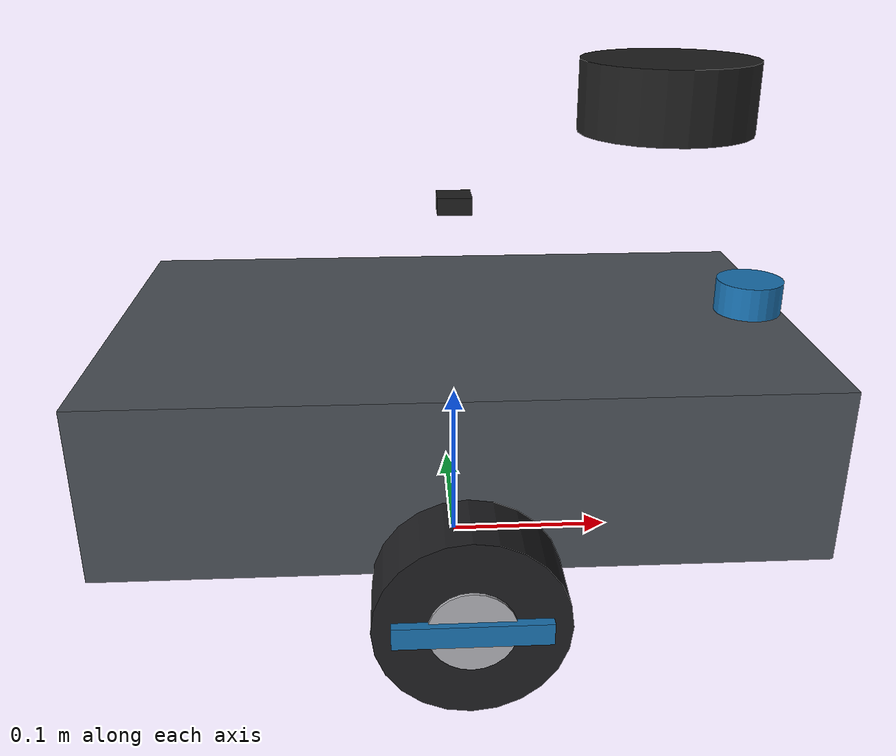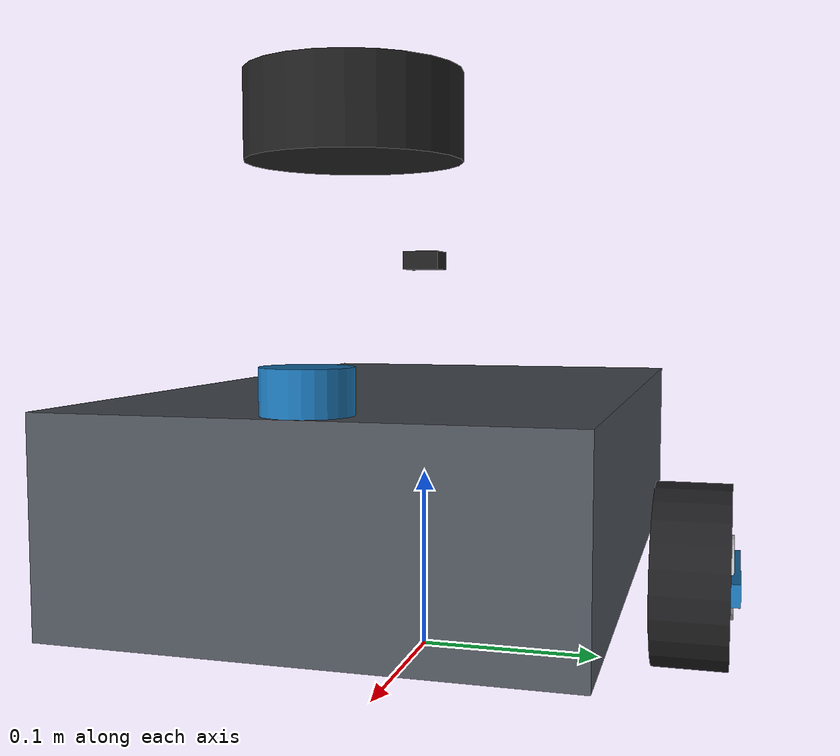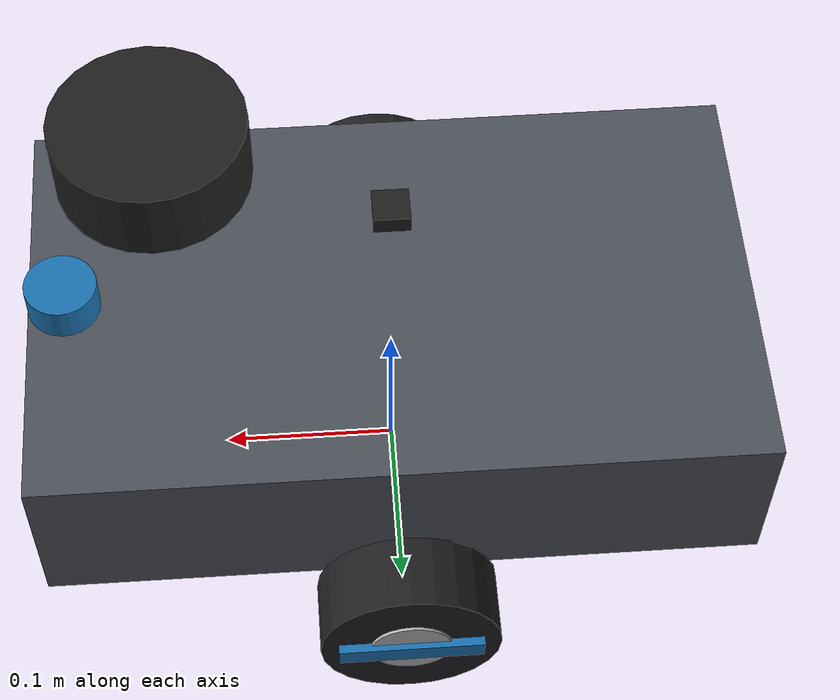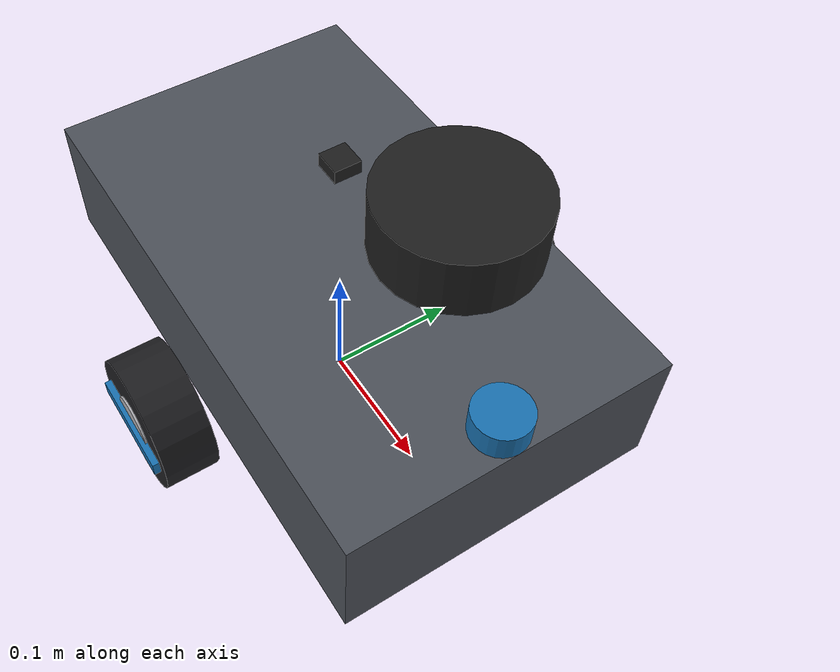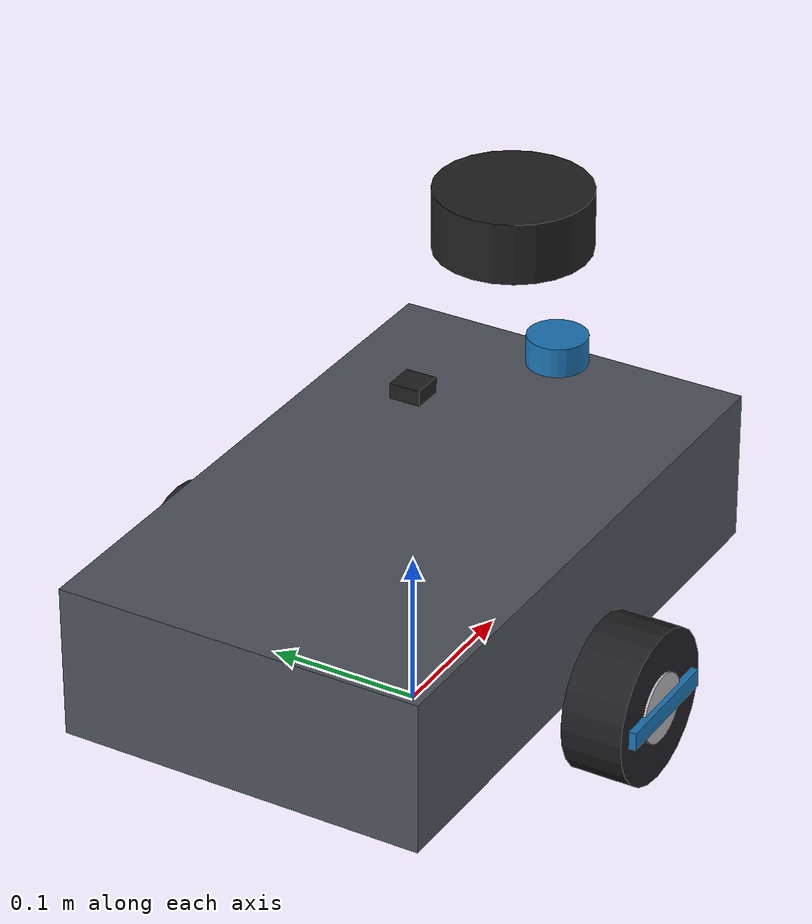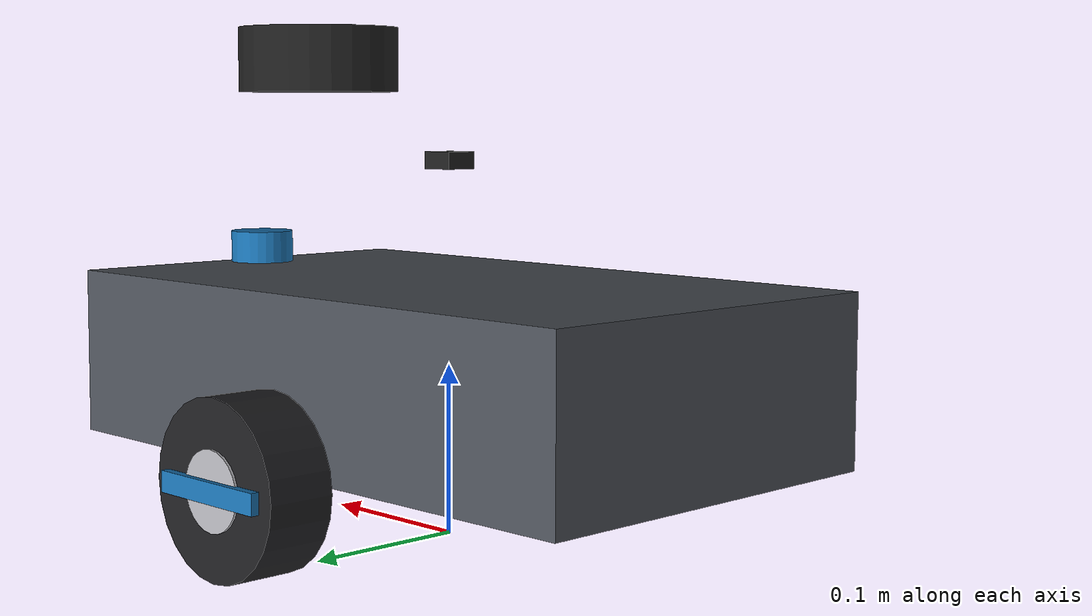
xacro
<?xml version="1.0"?>
<robot name="fleet_x_amr" xmlns:xacro="http://www.ros.org/wiki/xacro">

  <!-- ==================== Dimensions ==================== -->
  <xacro:include filename="$(find fleet_x_amr)/urdf/fleet_x_amr_dimensions.xacro"/>

  <!-- ==================== Appearance ==================== -->
  <xacro:include filename="$(find fleet_x_amr)/urdf/fleet_x_amr_materials.xacro"/>

  <!-- ==================== Kinematics and dynamics ==================== -->
  <xacro:include filename="$(find fleet_x_amr)/urdf/fleet_x_amr_chassis.xacro"/>
  <xacro:include filename="$(find fleet_x_amr)/urdf/fleet_x_amr_wheels.xacro"/>

  <!-- ==================== ros2_control ==================== -->
  <xacro:include filename="$(find fleet_x_amr)/urdf/fleet_x_amr_ros2_control.xacro"/>

  <!-- ==================== Sensors ==================== -->
  <xacro:include filename="$(find fleet_x_amr)/urdf/fleet_x_amr_sensors.xacro"/>

</robot>

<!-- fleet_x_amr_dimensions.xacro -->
<robot xmlns:xacro="http://www.ros.org/wiki/xacro">

  <!-- ==================== Drive geometry ==================== -->
  <!-- Wheel contact patch radius. Also the odometry conversion constant:
       v = wheel_radius * wheel_angular_velocity. -->
  <xacro:property name="WHEEL_RADIUS" value="0.05"/>
  <!-- Wheel thickness along its spin axis (the robot's Y axis). -->
  <xacro:property name="WHEEL_WIDTH" value="0.04"/>

  <!-- Track width: centre-to-centre distance of the two wheel contact
       points. This is the "wheel_separation" consumed by
       diff_drive_controller. -->
  <xacro:property name="WHEEL_SEPARATION" value="0.30"/>

  <!-- ==================== Chassis geometry ==================== -->
  <xacro:property name="BASE_LENGTH" value="0.40"/>
  <xacro:property name="BASE_HEIGHT" value="0.10"/>
  <xacro:property name="BASE_LINK_HEIGHT" value="0.10"/>
  <xacro:property name="BASE_MASS" value="5.0"/>
  <xacro:property name="WHEEL_MASS" value="0.5"/>

  <!-- Gap kept between the chassis side and the inner face of a wheel. -->
  <xacro:property name="WHEEL_CLEARANCE" value="0.01"/>

  <xacro:property
    name="BASE_HALF_WIDTH"
    value="${(WHEEL_SEPARATION - WHEEL_WIDTH) / 2.0 - WHEEL_CLEARANCE}"/>

  <xacro:property name="BASE_WIDTH" value="${2.0 * BASE_HALF_WIDTH}"/>

  <!-- Derived: wheel spin axis height above the ground equals the wheel
       radius, so the wheels rest exactly on the ground plane. -->
  <xacro:property
    name="WHEEL_AXLE_Z"
    value="${BASE_LINK_HEIGHT - WHEEL_RADIUS}"/>

</robot>

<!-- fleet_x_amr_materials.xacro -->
<!--
  FLEET-X : Gazebo material definitions.

  Declared once and referenced by name from the visual blocks so that the
  chassis and the wheels keep a consistent, easily re-themeable palette.
-->
<robot xmlns:xacro="http://www.ros.org/wiki/xacro">

  <material name="fleet_x_chassis_grey">
    <color rgba="0.30 0.32 0.35 1.0"/>
  </material>

  <material name="fleet_x_chassis_accent">
    <color rgba="0.10 0.45 0.70 1.0"/>
  </material>

  <material name="fleet_x_wheel_dark">
    <color rgba="0.12 0.12 0.13 1.0"/>
  </material>

  <material name="fleet_x_wheel_hub">
    <color rgba="0.70 0.70 0.72 1.0"/>
  </material>

</robot>

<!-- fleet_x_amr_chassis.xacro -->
<robot xmlns:xacro="http://www.ros.org/wiki/xacro">

  <!--
    Ground-projected frame. Purely kinematic reference; it has no mass and no
    collision geometry so it never perturbs the Gazebo physics.
  -->
  <link name="base_footprint">
    <visual>
      <origin xyz="0 0 0" rpy="0 0 0"/>
      <geometry>
        <box size="0.001 0.001 0.001"/>
      </geometry>
      <material name="fleet_x_chassis_grey"/>
    </visual>
  </link>

  <joint name="base_footprint_to_base_link" type="fixed">
    <parent link="base_footprint"/>
    <child link="base_link"/>
    <origin xyz="0 0 ${BASE_LINK_HEIGHT}" rpy="0 0 0"/>
  </joint>

  <link name="base_link">
    <visual>
      <origin xyz="0 0 0" rpy="0 0 0"/>
      <geometry>
        <box size="${BASE_LENGTH} ${BASE_WIDTH} ${BASE_HEIGHT}"/>
      </geometry>
      <material name="fleet_x_chassis_grey"/>
    </visual>

    <collision>
      <origin xyz="0 0 0" rpy="0 0 0"/>
      <geometry>
        <box size="${BASE_LENGTH} ${BASE_WIDTH} ${BASE_HEIGHT}"/>
      </geometry>
    </collision>

    <inertial>
      <origin xyz="0 0 0" rpy="0 0 0"/>
      <mass value="${BASE_MASS}"/>
      <inertia
        ixx="${BASE_MASS * (BASE_WIDTH * BASE_WIDTH + BASE_HEIGHT * BASE_HEIGHT) / 12.0}"
        ixy="0.0" ixz="0.0"
        iyy="${BASE_MASS * (BASE_LENGTH * BASE_LENGTH + BASE_HEIGHT * BASE_HEIGHT) / 12.0}"
        iyz="0.0"
        izz="${BASE_MASS * (BASE_LENGTH * BASE_LENGTH + BASE_WIDTH * BASE_WIDTH) / 12.0}"/>
    </inertial>
  </link>

  <joint name="base_link_to_sensor_mount" type="fixed">
    <parent link="base_link"/>
    <child link="sensor_mount"/>
    <origin xyz="${BASE_LENGTH / 2.0 - 0.02} 0 ${BASE_HEIGHT / 2.0}"
            rpy="0 0 0"/>
  </joint>

  <link name="sensor_mount">
    <visual>
      <origin xyz="0 0 0.01" rpy="0 0 0"/>
      <geometry>
        <cylinder radius="0.02" length="0.02"/>
      </geometry>
      <material name="fleet_x_chassis_accent"/>
    </visual>
    <collision>
      <origin xyz="0 0 0.01" rpy="0 0 0"/>
      <geometry>
        <cylinder radius="0.02" length="0.02"/>
      </geometry>
    </collision>
    <inertial>
      <origin xyz="0 0 0.01" rpy="0 0 0"/>
      <mass value="0.1"/>
      <inertia ixx="1.0e-05" ixy="0.0" ixz="0.0"
               iyy="1.0e-05" iyz="0.0" izz="1.0e-05"/>
    </inertial>
  </link>

</robot>

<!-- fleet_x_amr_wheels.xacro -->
<robot xmlns:xacro="http://www.ros.org/wiki/xacro">

  <xacro:macro name="fleet_x_amr_wheel"
               params="prefix axis y_pos y_out">

    <!-- Axle is WHEEL_RADIUS below base_link, i.e. exactly one wheel radius
         above the ground plane, so the wheels rest on the ground. -->
    <joint name="${prefix}_wheel_joint" type="continuous">
      <parent link="base_link"/>
      <child link="${prefix}_wheel"/>
      <origin xyz="0 ${y_pos} ${-WHEEL_RADIUS}" rpy="0 0 0"/>
      <axis xyz="${axis}"/>
    </joint>

    <link name="${prefix}_wheel">

      <!-- Tyre. A URDF cylinder points along its local +Z; rotating it 90
           degrees about X aligns the cylinder axis with the robot's Y axis,
           which is the wheel's spin axis. -->
      <visual>
        <origin xyz="0 0 0" rpy="${pi / 2} 0 0"/>
        <geometry>
          <cylinder radius="${WHEEL_RADIUS}" length="${WHEEL_WIDTH}"/>
        </geometry>
        <material name="fleet_x_wheel_dark"/>
      </visual>

      <!-- Collision geometry matches the tyre so that Gazebo resolves the
           ground contact from the real rolling radius. -->
      <collision>
        <origin xyz="0 0 0" rpy="${pi / 2} 0 0"/>
        <geometry>
          <cylinder radius="${WHEEL_RADIUS}" length="${WHEEL_WIDTH}"/>
        </geometry>
      </collision>

      <!-- Hub cap: slightly proud of the tyre on both sides. -->
      <visual>
        <origin xyz="0 0 0" rpy="${pi / 2} 0 0"/>
        <geometry>
          <cylinder radius="${0.45 * WHEEL_RADIUS}"
                   length="${1.08 * WHEEL_WIDTH}"/>
        </geometry>
        <material name="fleet_x_wheel_hub"/>
      </visual>

      <!-- Single radial bar across the outer wheel face. Purely cosmetic, but
           it makes wheel rotation unambiguous to the eye in the Gazebo GUI
           and in RViz. -->
      <visual>
        <origin xyz="0 ${y_out} 0" rpy="0 0 0"/>
        <geometry>
          <box size="${1.6 * WHEEL_RADIUS} 0.006 0.012"/>
        </geometry>
        <material name="fleet_x_chassis_accent"/>
      </visual>

      <!-- Solid cylinder about its symmetry axis (Y):
             I_y  = 1/2 m r^2
             I_xx = I_zz = 1/12 m (3 r^2 + w^2)
           with r = WHEEL_RADIUS and w = WHEEL_WIDTH. -->
      <inertial>
        <origin xyz="0 0 0" rpy="0 0 0"/>
        <mass value="${WHEEL_MASS}"/>
        <inertia
          ixx="${WHEEL_MASS * (3.0 * WHEEL_RADIUS * WHEEL_RADIUS + WHEEL_WIDTH * WHEEL_WIDTH) / 12.0}"
          ixy="0.0" ixz="0.0"
          iyy="${0.5 * WHEEL_MASS * WHEEL_RADIUS * WHEEL_RADIUS}"
          iyz="0.0"
          izz="${WHEEL_MASS * (3.0 * WHEEL_RADIUS * WHEEL_RADIUS + WHEEL_WIDTH * WHEEL_WIDTH) / 12.0}"/>
      </inertial>

    </link>

  </xacro:macro>

  <!-- Left wheel: spin axis +Y, sits on +Y, outward face points +Y. -->
  <xacro:fleet_x_amr_wheel
      prefix="left"
      axis="0 1 0"
      y_pos="${WHEEL_SEPARATION / 2.0}"
      y_out="${WHEEL_WIDTH / 2.0 + 0.002}"/>

  <!-- Right wheel: spin axis -Y, sits on -Y, outward face points -Y. -->
  <xacro:fleet_x_amr_wheel
      prefix="right"
      axis="0 -1 0"
      y_pos="${-WHEEL_SEPARATION / 2.0}"
      y_out="${-WHEEL_WIDTH / 2.0 - 0.002}"/>

</robot>

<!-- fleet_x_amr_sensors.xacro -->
<!--
  FLEET-X : LiDAR and IMU sensors for Gazebo Harmonic.
-->
<robot xmlns:xacro="http://www.ros.org/wiki/xacro">

  <!-- ==================== LiDAR (2D) ==================== -->
  <link name="lidar_link">
    <inertial>
      <origin xyz="0 0 0" rpy="0 0 0"/>
      <mass value="0.1"/>
      <inertia ixx="0.0001" ixy="0" ixz="0" iyy="0.0001" iyz="0" izz="0.0001"/>
    </inertial>
    <visual>
      <origin xyz="0 0 0" rpy="0 0 0"/>
      <geometry>
        <cylinder radius="0.05" length="0.04"/>
      </geometry>
      <material name="black"/>
    </visual>
    <collision>
      <origin xyz="0 0 0" rpy="0 0 0"/>
      <geometry>
        <cylinder radius="0.05" length="0.04"/>
      </geometry>
    </collision>
  </link>

  <joint name="lidar_joint" type="fixed">
    <parent link="base_link"/>
    <child link="lidar_link"/>
    <origin xyz="0.12 0 0.18" rpy="0 0 0"/>
  </joint>

  <gazebo reference="lidar_link">
    <sensor name="gpu_lidar" type="gpu_lidar">
      <always_on>true</always_on>
      <visualize>true</visualize>
      <update_rate>10</update_rate>
      <topic>scan</topic>
      <gz_frame_id>lidar_link</gz_frame_id>
      <ray>
        <scan>
          <horizontal>
            <samples>360</samples>
            <resolution>1</resolution>
            <min_angle>-3.14159</min_angle>
            <max_angle>3.14159</max_angle>
          </horizontal>
        </scan>
        <range>
          <min>0.08</min>
          <max>12.0</max>
          <resolution>0.01</resolution>
        </range>
        <noise>
          <type>gaussian</type>
          <mean>0.0</mean>
          <stddev>0.01</stddev>
        </noise>
      </ray>
    </sensor>
  </gazebo>

  <!-- ==================== IMU ==================== -->
  <link name="imu_link">
    <inertial>
      <origin xyz="0 0 0" rpy="0 0 0"/>
      <mass value="0.01"/>
      <inertia ixx="0.000001" ixy="0" ixz="0" iyy="0.000001" iyz="0" izz="0.000001"/>
    </inertial>
    <visual>
      <origin xyz="0 0 0" rpy="0 0 0"/>
      <geometry>
        <box size="0.02 0.02 0.01"/>
      </geometry>
      <material name="black"/>
    </visual>
    <collision>
      <origin xyz="0 0 0" rpy="0 0 0"/>
      <geometry>
        <box size="0.02 0.02 0.01"/>
      </geometry>
    </collision>
  </link>

  <joint name="imu_joint" type="fixed">
    <parent link="base_link"/>
    <child link="imu_link"/>
    <origin xyz="0.0 0 0.12" rpy="0 0 0"/>
  </joint>

  <gazebo reference="imu_link">
    <sensor name="imu_sensor" type="imu">
      <always_on>true</always_on>
      <update_rate>100</update_rate>
      <topic>imu</topic>
      <gz_frame_id>imu_link</gz_frame_id>
      <imu>
        <angular_velocity>
          <x>
            <noise type="gaussian">
              <mean>0.0</mean>
              <stddev>2e-4</stddev>
            </noise>
          </x>
          <y>
            <noise type="gaussian">
              <mean>0.0</mean>
              <stddev>2e-4</stddev>
            </noise>
          </y>
          <z>
            <noise type="gaussian">
              <mean>0.0</mean>
              <stddev>2e-4</stddev>
            </noise>
          </z>
        </angular_velocity>
        <linear_acceleration>
          <x>
            <noise type="gaussian">
              <mean>0.0</mean>
              <stddev>1.7e-2</stddev>
            </noise>
          </x>
          <y>
            <noise type="gaussian">
              <mean>0.0</mean>
              <stddev>1.7e-2</stddev>
            </noise>
          </y>
          <z>
            <noise type="gaussian">
              <mean>0.0</mean>
              <stddev>1.7e-2</stddev>
            </noise>
          </z>
        </linear_acceleration>
      </imu>
    </sensor>
  </gazebo>

</robot>
